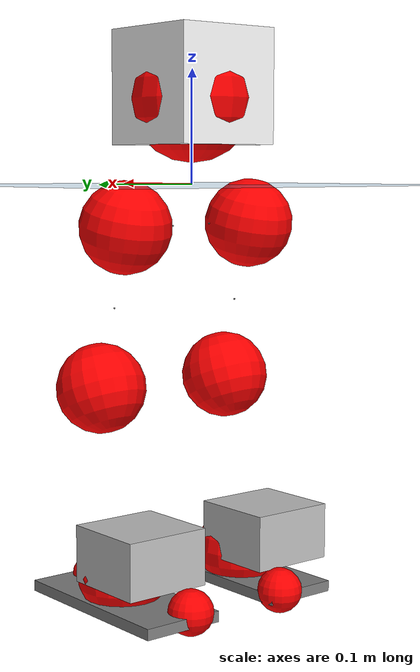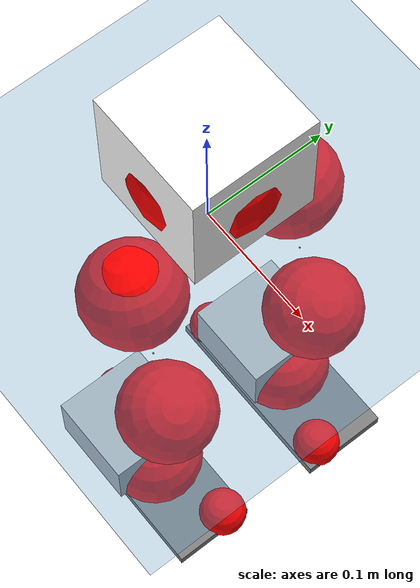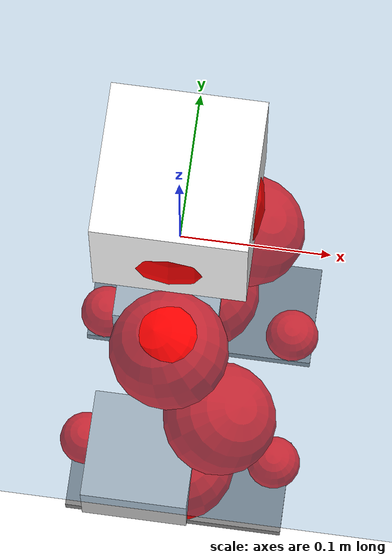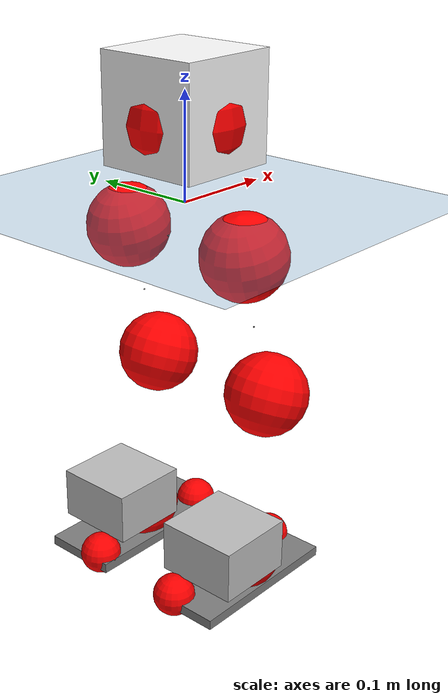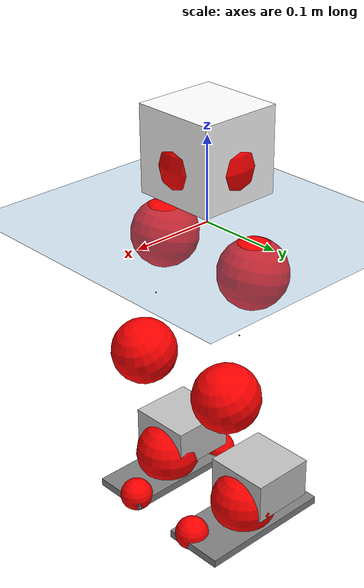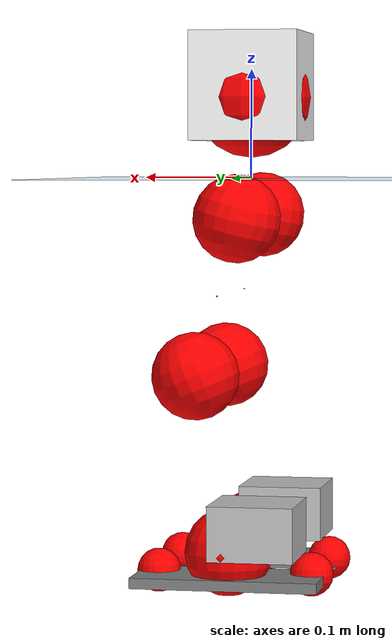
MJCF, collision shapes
<mujoco model="pi_12dof_release_v1">
  <compiler angle="radian" assetdir="assets" balanceinertia="true" inertiafromgeom="false"/>

  <option timestep="0.005" density="1.2" viscosity="2e-05"/>

  <size nkey="1"/>

  <visual>
    <quality shadowsize="8192"/>
    <map shadowclip="0.5"/>
  </visual>

  <default>
    <default class="/">
      <joint armature="0.01" damping="0.01" frictionloss="0.01"/>
      <geom contype="0" conaffinity="0" group="1" solref="-1000 -80"/>
      <site size="0.01 0.005 0.005" group="5"/>
      <general forcelimited="true" biastype="affine" gainprm="20" biasprm="0 -20 -0.5"/>
      <default class="foot">
        <geom size="0.0845 0.036 0.005" type="box" condim="6" group="4" priority="1" friction="0.9 0.2 0.2" solimp="0.015 1 0.005"/>
      </default>
      <default class="reward_collision_sphere">
        <geom group="5" rgba="1 0 0 1"/>
      </default>
    </default>
  </default>

  <asset>
    <texture type="skybox" colorspace="auto" name="//unnamed_texture_0" builtin="gradient" rgb1="0.95 0.95 0.95" rgb2="0.95 0.95 0.95" width="100" height="600"/>
    <texture type="2d" colorspace="auto" name="texplane" builtin="checker" rgb1="0.345 0.575 0.748" rgb2="0.345 0.575 0.748" markrgb="1 1 1" width="512" height="512"/>
    <material name="MatPlane" class="/" texture="texplane" texuniform="true" texrepeat="2 2" specular="0.9"/>
    <mesh name="baselink_1" class="/" file="baselink_1.STL"/>
    <mesh name="r_hip_pitch_link" class="/" file="r_hip_pitch_link.STL"/>
    <mesh name="r_hip_roll_link" class="/" file="r_hip_roll_link.STL"/>
    <mesh name="r_thigh_link" class="/" file="r_thigh_link.STL"/>
    <mesh name="r_calf_link" class="/" file="r_calf_link.STL"/>
    <mesh name="r_ankle_pitch_link" class="/" file="r_ankle_pitch_link.STL"/>
    <mesh name="r_ankle_roll_link" class="/" file="r_ankle_roll_link.STL"/>
    <mesh name="l_hip_pitch_link" class="/" file="l_hip_pitch_link.STL"/>
    <mesh name="l_hip_roll_link" class="/" file="l_hip_roll_link.STL"/>
    <mesh name="l_thigh_link" class="/" file="l_thigh_link.STL"/>
    <mesh name="l_calf_link" class="/" file="l_calf_link.STL"/>
    <mesh name="l_ankle_pitch_link" class="/" file="l_ankle_pitch_link.STL"/>
    <mesh name="l_ankle_roll_link" class="/" file="l_ankle_roll_link.STL"/>
  </asset>

  <worldbody>
    <geom name="floor" class="/" size="100 100 0.125" type="plane" group="0" material="MatPlane"/>
    <light name="toplight_shadow" class="/" pos="0 0 5" dir="0.0990148 0.0990148 -0.990148" type="directional" ambient="0.04 0.04 0.04" diffuse="0.55 0.55 0.55" specular="0.12 0.12 0.12"/>
    <light name="toplight_fill" class="/" pos="0 0 5" dir="0.0990148 0.0990148 -0.990148" type="directional" castshadow="false" ambient="0.04 0.04 0.04" diffuse="0.3 0.3 0.3" specular="0.08 0.08 0.08"/>
    <body name="trunk" pos="-4.77691e-05 -0.000157087 -0.000553196" quat="1 -1.05035e-05 -0.000240123 -0.000384928">
      <inertial pos="0.00072707 -0.00156327 0.0434748" quat="0.694557 0.00960876 0.0104826 0.719297" mass="2.19444" diaginertia="0.0124574 0.00506906 0.00563828"/>
      <joint name="//unnamed_joint_0" type="free"/>
      <geom name="//unnamed_geom_1" class="/" type="mesh" density="0" rgba="1 1 1 1" mesh="baselink_1"/>
      <geom name="//unnamed_geom_2" class="/" size="0.0500515 0.0500515 0.0500515" pos="0 0 0.084939" type="box" rgba="1 1 1 1"/>
      <geom name="//unnamed_geom_3" class="reward_collision_sphere" size="0.0550567" pos="0 0 0.0743216"/>
      <site name="imu" class="/" pos="0.00472362 0.000361067 -0.00462135" size="0.0100103"/>
      <camera name="track" class="/" pos="0 -1.78302 0" quat="0.707107 0.707107 0 0" mode="trackcom"/>
      <camera name="ego_camera" class="/" pos="0.0787383 0 0.191113" quat="-0.5 -0.5 0.5 0.5"/>
      <body name="r_hip_pitch_link" pos="0.000168398 -0.0195744 -0.0342629" quat="0.992199 -5.87927e-06 -0.124664 -1.17576e-05">
        <inertial pos="0.00123352 -0.0499348 1.5977e-05" quat="-0.0192965 0.705648 -0.0284835 0.707727" mass="0.359176" diaginertia="0.000135754 5.40387e-05 0.000109684"/>
        <joint name="r_hip_pitch_joint" class="/" pos="0 0 0" axis="-0.000860954 -0.999995 0.00319725" range="-1.74251 1.2253" armature="0.0097782" damping="0.013241" frictionloss="0.0104347"/>
        <geom name="//unnamed_geom_4" class="/" type="mesh" density="0" rgba="0.75294 0.75294 0.75294 1" mesh="r_hip_pitch_link"/>
        <geom name="//unnamed_geom_5" class="/" size="0.000500515 0.000500515 0.000500515" type="box" rgba="0.75294 0.75294 0.75294 1"/>
        <body name="r_hip_roll_link" pos="0.00121259 -0.0481341 -0.000831526" quat="1 9.27799e-05 -8.18904e-05 -0.00023696">
          <inertial pos="-0.000829436 6.68618e-05 -0.0658533" quat="0.706091 -0.0792188 -0.0830764 0.698755" mass="0.391756" diaginertia="0.000425207 0.000153694 0.000172537"/>
          <joint name="r_hip_roll_joint" class="/" pos="0 0 0" axis="-0.999997 -0.00154642 -0.00175916" range="-0.111151 0.496886" armature="0.0104153" damping="0" frictionloss="0.0105678"/>
          <geom name="//unnamed_geom_6" class="/" type="mesh" density="0" rgba="0.75294 0.75294 0.75294 1" mesh="r_hip_roll_link"/>
          <geom name="//unnamed_geom_7" class="/" size="0.000500515 0.000500515 0.000500515" type="box" rgba="0.75294 0.75294 0.75294 1"/>
          <geom name="//unnamed_geom_8" class="reward_collision_sphere" size="0.0400412"/>
          <body name="r_thigh_link" pos="-0.000628611 0.00154069 -0.0733029" quat="1 1.28216e-05 -9.54156e-06 -2.26938e-06">
            <inertial pos="9.02709e-05 0.000766032 -0.0494111" quat="0.737411 0.675444 2.4466e-05 2.93315e-05" mass="0.112601" diaginertia="0.00015795 5.31025e-05 7.80187e-05"/>
            <joint name="r_thigh_joint" class="/" pos="0 0 0" axis="8.05039e-05 2.25527e-05 -1" range="-0.293437 0.590726" armature="0.0105663" damping="0.0100639" frictionloss="0.00952873"/>
            <geom name="//unnamed_geom_9" class="/" type="mesh" density="0" rgba="0.75294 0.75294 0.75294 1" mesh="r_thigh_link"/>
            <geom name="//unnamed_geom_10" class="/" size="0.000500515 0.000500515 0.000500515" type="box" rgba="0.75294 0.75294 0.75294 1"/>
            <body name="r_calf_link" pos="-0.00111685 -0.00315083 -0.0748259" quat="0.947652 -3.596e-06 0.319306 -5.68631e-06">
              <inertial pos="0.000274455 -0.00253125 -0.0734973" quat="0.999975 -0.00328385 -0.0060719 0.0017463" mass="0.821849" diaginertia="0.0045208 0.00200535 0.000237787"/>
              <joint name="r_calf_joint" class="/" pos="0 0 0" axis="0.000135725 -0.99999 0.0044425" stiffness="0.00221221" range="-1.64944 0.63144" armature="0.0105372" damping="0.00969613" frictionloss="0.0100047"/>
              <geom name="//unnamed_geom_11" class="/" type="mesh" density="0" rgba="0.75294 0.75294 0.75294 1" mesh="r_calf_link"/>
              <geom name="//unnamed_geom_12" class="/" size="0.000500515 0.000500515 0.000500515" type="box" rgba="0.75294 0.75294 0.75294 1"/>
              <geom name="//unnamed_geom_13" class="reward_collision_sphere" size="0.0400412"/>
              <body name="r_ankle_pitch_link" pos="3.8275e-05 0.00104956 -0.149207" quat="0.980089 9.80379e-05 -0.198557 0.000135268">
                <inertial pos="0.00585571 0.00313343 0.000684383" quat="0.00491843 0.705685 0.000573778 0.708508" mass="0.175278" diaginertia="0.000393839 0.00012386 0.000162664"/>
                <joint name="r_ankle_pitch_joint" class="/" pos="0 0 0" axis="-0.00424451 -0.999989 -0.00189397" range="-1.28761 0.488095" armature="0.00955398" damping="0.0049682" frictionloss="0.009911"/>
                <geom name="//unnamed_geom_14" class="/" type="mesh" density="0" rgba="0.75294 0.75294 0.75294 1" mesh="r_ankle_pitch_link"/>
                <geom name="//unnamed_geom_15" class="/" size="0.0390402 0.0400412 0.0250258" type="box" rgba="0.75294 0.75294 0.75294 1"/>
                <body name="r_ankle_roll_link" pos="0.0808658 0.00363694 -0.000435815" quat="1 8.46081e-05 -7.83065e-07 0.000406964">
                  <inertial pos="-0.0250667 4.36702e-05 -0.0157357" quat="0.558736 0.43455 0.42936 0.560919" mass="0.513972" diaginertia="0.00142689 0.00058685 0.000382201"/>
                  <joint name="r_ankle_roll_joint" class="/" pos="0 0 0" axis="-0.999993 -0.00370995 0.000344866" range="-0.163837 0.147342" armature="0.0105766" damping="0.00650527" frictionloss="0.0100122"/>
                  <geom name="//unnamed_geom_16" class="/" type="mesh" density="0" rgba="0.75294 0.75294 0.75294 1" mesh="r_ankle_roll_link"/>
                  <geom name="//unnamed_geom_17" class="/" type="mesh" rgba="0.75294 0.75294 0.75294 1" mesh="r_ankle_roll_link"/>
                  <geom name="right_foot" class="foot" size="0.0809149 0.0349286 0.00477195" pos="-0.0535421 0 -0.0467165"/>
                  <geom name="//unnamed_geom_19" class="reward_collision_sphere" size="0.0400412" pos="-0.0524922 0 -0.0212348"/>
                  <geom name="//unnamed_geom_20" class="reward_collision_sphere" size="0.0200206" pos="0.0157477 0.0178302 -0.0424695"/>
                  <geom name="//unnamed_geom_21" class="reward_collision_sphere" size="0.0200206" pos="-0.125981 0.0178302 -0.0424695"/>
                  <site name="right_foot" class="foot" pos="-0.0535421 0 -0.0467165" size="0.0100103"/>
                </body>
              </body>
            </body>
          </body>
        </body>
      </body>
      <body name="l_hip_pitch_link" pos="0.000484198 0.0211884 -0.0352907" quat="0.992196 -1.06664e-05 -0.124686 1.42604e-05">
        <inertial pos="0.00100531 0.0473336 -0.00142309" quat="-0.038579 0.705591 0.0295781 0.70695" mass="0.396166" diaginertia="0.000169494 5.97733e-05 0.00013939"/>
        <joint name="l_hip_pitch_joint" class="/" pos="0 0 0" axis="0.000811702 0.999999 0.0012049" range="-1.238 1.75343" armature="0.00985097" damping="0.00753837" frictionloss="0.010332"/>
        <geom name="//unnamed_geom_22" class="/" type="mesh" density="0" rgba="0.75294 0.75294 0.75294 1" mesh="l_hip_pitch_link"/>
        <geom name="//unnamed_geom_23" class="/" size="0.000500515 0.000500515 0.000500515" type="box" rgba="0.75294 0.75294 0.75294 1"/>
        <body name="l_hip_roll_link" pos="0.000213681 0.0509552 -0.000411718" quat="1 -0.000176234 -0.000163627 5.67874e-05">
          <inertial pos="-0.00291926 -0.000611674 -0.0662149" quat="0.699858 -0.07476 -0.0779792 0.706066" mass="0.396087" diaginertia="0.000419785 0.000156299 0.000173013"/>
          <joint name="l_hip_roll_joint" class="/" pos="0 0 0" axis="-0.999999 0.00116597 -0.000611034" range="-0.511018 0.112307" armature="0.00996004" damping="0.00463488" frictionloss="0.0104685"/>
          <geom name="//unnamed_geom_24" class="/" type="mesh" density="0" rgba="0.75294 0.75294 0.75294 1" mesh="l_hip_roll_link"/>
          <geom name="//unnamed_geom_25" class="/" size="0.000500515 0.000500515 0.000500515" type="box" rgba="0.75294 0.75294 0.75294 1"/>
          <geom name="//unnamed_geom_26" class="reward_collision_sphere" size="0.0400412"/>
          <body name="l_thigh_link" pos="0.000363821 -0.00114589 -0.0724974" quat="1 4.55817e-05 0.000172882 1.31316e-05">
            <inertial pos="-0.000580111 -0.00116509 -0.0497959" quat="0.678002 0.735058 0.00158123 -0.00030397" mass="0.11529" diaginertia="0.000163975 5.47277e-05 7.94866e-05"/>
            <joint name="l_thigh_joint" class="/" pos="0 0 0" axis="-0.000739569 -0.00125237 -0.999999" range="-0.623354 0.314367" armature="0.00977867" damping="0.00252517" frictionloss="0.0100522"/>
            <geom name="//unnamed_geom_27" class="/" type="mesh" density="0" rgba="0.75294 0.75294 0.75294 1" mesh="l_thigh_link"/>
            <geom name="//unnamed_geom_28" class="/" size="0.000500515 0.000500515 0.000500515" type="box" rgba="0.75294 0.75294 0.75294 1"/>
            <body name="l_calf_link" pos="0.00116239 0.000675344 -0.0751768" quat="0.947565 -9.1079e-05 0.319564 -0.000199897">
              <inertial pos="0.00130396 0.00200315 -0.0757786" quat="0.999935 0.0104766 0.00376053 0.00226794" mass="0.802353" diaginertia="0.00439755 0.00193536 0.000230923"/>
              <joint name="l_calf_joint" class="/" pos="0 0 0" axis="0.000504072 1 0.000438266" stiffness="0.000108503" range="-0.65355 1.63986" armature="0.0102048" damping="0.00340844" frictionloss="0.00968014"/>
              <geom name="//unnamed_geom_29" class="/" type="mesh" density="0" rgba="0.75294 0.75294 0.75294 1" mesh="l_calf_link"/>
              <geom name="//unnamed_geom_30" class="/" size="0.000500515 0.000500515 0.000500515" type="box" rgba="0.75294 0.75294 0.75294 1"/>
              <geom name="//unnamed_geom_31" class="reward_collision_sphere" size="0.0400412"/>
              <body name="l_ankle_pitch_link" pos="0.00183376 -0.000282515 -0.149412" quat="0.980064 -8.14254e-05 -0.198683 3.87617e-05">
                <inertial pos="0.00487264 -0.00170535 0.000402757" quat="-0.00270625 0.70672 0.00204879 0.707486" mass="0.17876" diaginertia="0.000397271 0.000126038 0.000162286"/>
                <joint name="l_ankle_pitch_joint" class="/" pos="0 0 0" axis="0.000432731 1 -0.000201666" range="-0.48547 1.31766" armature="0.0103355" damping="0.00777937" frictionloss="0.00958914"/>
                <geom name="//unnamed_geom_32" class="/" type="mesh" density="0" rgba="0.75294 0.75294 0.75294 1" mesh="l_ankle_pitch_link"/>
                <geom name="//unnamed_geom_33" class="/" size="0.0390402 0.0400412 0.0250258" type="box" rgba="0.75294 0.75294 0.75294 1"/>
                <body name="l_ankle_roll_link" pos="0.0784209 0.000568786 0.000275053" quat="1 0.000403939 -0.000301333 -6.97599e-05">
                  <inertial pos="-0.0258713 0.000616474 -0.0150677" quat="0.559918 0.430118 0.4339 0.559662" mass="0.524198" diaginertia="0.00146346 0.000580686 0.000386032"/>
                  <joint name="l_ankle_roll_joint" class="/" pos="0 0 0" axis="-1 -1.77561e-05 -3.76309e-05" range="-0.147149 0.164356" armature="0.0100133" damping="0.0137116" frictionloss="0.00955198"/>
                  <geom name="//unnamed_geom_34" class="/" type="mesh" density="0" rgba="0.75294 0.75294 0.75294 1" mesh="l_ankle_roll_link"/>
                  <geom name="//unnamed_geom_35" class="/" type="mesh" rgba="0.75294 0.75294 0.75294 1" mesh="l_ankle_roll_link"/>
                  <geom name="left_foot" class="foot" size="0.0852608 0.0376638 0.00481799" pos="-0.0535421 0 -0.0467165"/>
                  <geom name="//unnamed_geom_37" class="reward_collision_sphere" size="0.0400412" pos="-0.0524922 0 -0.0212348"/>
                  <geom name="//unnamed_geom_38" class="reward_collision_sphere" size="0.0200206" pos="0.0157477 -0.0178302 -0.0424695"/>
                  <geom name="//unnamed_geom_39" class="reward_collision_sphere" size="0.0200206" pos="-0.125981 -0.0178302 -0.0424695"/>
                  <site name="left_foot" class="foot" pos="-0.0535421 0 -0.0467165" size="0.0100103"/>
                </body>
              </body>
            </body>
          </body>
        </body>
      </body>
    </body>
  </worldbody>

  <contact>
    <pair class="/" geom1="floor" geom2="right_foot" name="//unnamed_contact_1"/>
    <pair class="/" geom1="floor" geom2="left_foot" name="//unnamed_contact_0"/>
  </contact>

  <actuator>
    <general name="r_hip_pitch_joint" class="/" joint="r_hip_pitch_joint" forcerange="-21.0591 21.0591" gainprm="19.2331" biasprm="0 -19.2331 -0.498738"/>
    <general name="r_hip_roll_joint" class="/" joint="r_hip_roll_joint" forcerange="-20.9226 20.9226" gainprm="19.2331" biasprm="0 -19.2331 -0.498738"/>
    <general name="r_thigh_joint" class="/" joint="r_thigh_joint" forcerange="-21.0599 21.0599" gainprm="19.2331" biasprm="0 -19.2331 -0.498738"/>
    <general name="r_calf_joint" class="/" joint="r_calf_joint" forcerange="-21.6446 21.6446" gainprm="19.2331" biasprm="0 -19.2331 -0.498738"/>
    <general name="r_ankle_pitch_joint" class="/" joint="r_ankle_pitch_joint" forcerange="-21.3954 21.3954" gainprm="19.2331" biasprm="0 -19.2331 -0.498738"/>
    <general name="r_ankle_roll_joint" class="/" joint="r_ankle_roll_joint" forcerange="-20.7258 20.7258" gainprm="19.2331" biasprm="0 -19.2331 -0.498738"/>
    <general name="l_hip_pitch_joint" class="/" joint="l_hip_pitch_joint" forcerange="-21.1989 21.1989" gainprm="19.2331" biasprm="0 -19.2331 -0.498738"/>
    <general name="l_hip_roll_joint" class="/" joint="l_hip_roll_joint" forcerange="-20.1306 20.1306" gainprm="19.2331" biasprm="0 -19.2331 -0.498738"/>
    <general name="l_thigh_joint" class="/" joint="l_thigh_joint" forcerange="-21.4159 21.4159" gainprm="19.2331" biasprm="0 -19.2331 -0.498738"/>
    <general name="l_calf_joint" class="/" joint="l_calf_joint" forcerange="-20.8685 20.8685" gainprm="19.2331" biasprm="0 -19.2331 -0.498738"/>
    <general name="l_ankle_pitch_joint" class="/" joint="l_ankle_pitch_joint" forcerange="-20.6146 20.6146" gainprm="19.2331" biasprm="0 -19.2331 -0.498738"/>
    <general name="l_ankle_roll_joint" class="/" joint="l_ankle_roll_joint" forcerange="-20.7147 20.7147" gainprm="19.2331" biasprm="0 -19.2331 -0.498738"/>
  </actuator>

  <sensor>
    <gyro site="imu" name="imu_angular_velocity"/>
    <velocimeter site="imu" name="imu_linear_velocity"/>
    <framelinvel objtype="site" objname="left_foot" name="left_foot_global_linear_velocity"/>
    <framelinvel objtype="site" objname="right_foot" name="right_foot_global_linear_velocity"/>
  </sensor>

  <keyframe>
    <key name="home" qpos="0 0 0.291 1 0 0 0 0.4 0 0 -0.8 0.4 0 -0.4 0 0 0.8 -0.4 0"/>
  </keyframe>
</mujoco>
